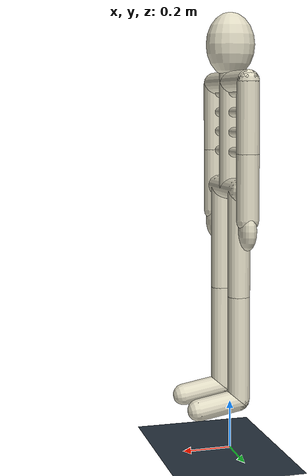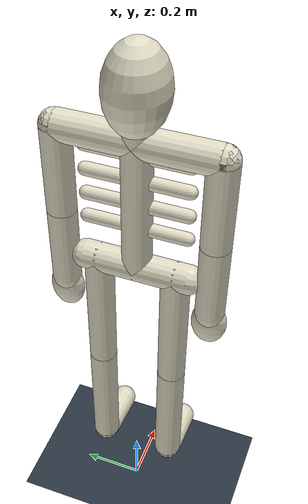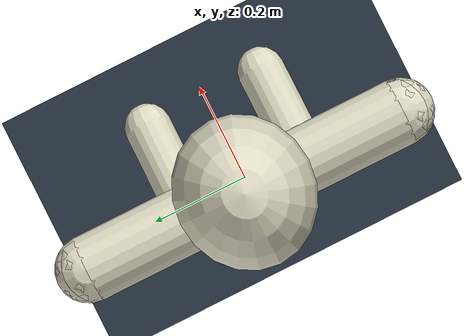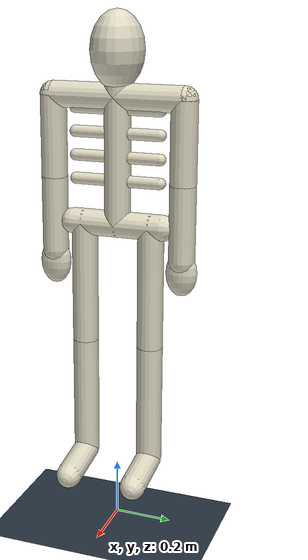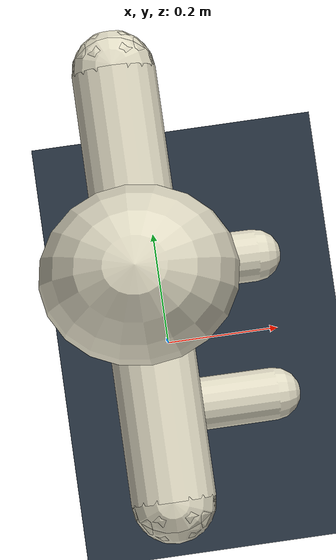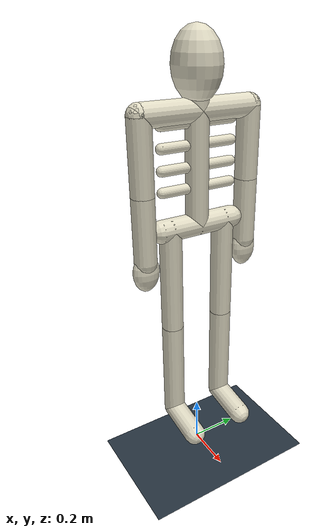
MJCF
<mujoco model="supported_scuba_skeleton">
  <compiler angle="radian" autolimits="true" />
  <option timestep="0.002" integrator="implicitfast" />
  <default>
    <joint damping="1.5" armature="0.03" limited="true" />
    <geom type="capsule" size="0.045" rgba="0.88 0.86 0.77 1" contype="0" conaffinity="0" />
  </default>
  <worldbody>
    <light pos="1 -2 4" dir="-0.2 0.5 -1" />
    <geom name="floor" type="plane" size="4 4 0.1" rgba="0.15 0.20 0.25 1" />
    <body name="pelvis" pos="0 0 1.1">
      <geom fromto="0 -0.16 0 0 0.16 0" mass="6" name="pelvis" />
      <body name="torso">
        <joint name="torso_sway" axis="1 0 0" range="-0.3 0.3" />
        <joint name="torso_turn" axis="0 0 1" range="-0.4 0.4" />
        <geom fromto="0 0 0 0 0 0.5" mass="12" name="spine" contype="1" conaffinity="2" />
        <geom fromto="0 -0.23 0.43 0 0.23 0.43" mass="2" name="shoulder_bar" contype="1" conaffinity="2" />
        <geom fromto="0 -0.15 0.15 0 0.15 0.15" size="0.02" mass="0.15" name="rib_1" contype="1" conaffinity="2" />
        <geom fromto="0 -0.15 0.23 0 0.15 0.23" size="0.02" mass="0.15" name="rib_2" contype="1" conaffinity="2" />
        <geom fromto="0 -0.15 0.31 0 0.15 0.31" size="0.02" mass="0.15" name="rib_3" contype="1" conaffinity="2" />
        <geom fromto="0 -0.15 0.39 0 0.15 0.39" size="0.02" mass="0.15" name="rib_4" contype="1" conaffinity="2" />
        <body name="head" pos="0 0 0.58">
          <joint name="head_nod" axis="0 1 0" range="-0.4 0.4" />
          <geom type="ellipsoid" size="0.10 0.09 0.13" mass="3" name="skull" />
        </body>
        <body name="right_upper_arm" pos="0 -0.23 0.43">
          <joint name="right_shoulder_forward" axis="0 1 0" range="-1.8 1.8" />
          <joint name="right_shoulder_out" axis="1 0 0" range="-1.5 1.5" />
          <joint name="right_shoulder_twist" axis="0 0 1" range="-2.5 2.5" />
          <geom fromto="0 0 0 0 0 -0.28" mass="1.5" name="right_upper_arm" contype="2" conaffinity="1" />
          <body name="right_forearm" pos="0 0 -0.28">
            <joint name="right_elbow" axis="0 -1 0" range="0 2.4" />
            <geom fromto="0 0 0 0 0 -0.26" mass="1" name="right_forearm" contype="2" conaffinity="1" />
            <geom type="ellipsoid" pos="0 0 -0.30" size="0.035 0.055 0.08" mass="0.3" name="right_hand" contype="2" conaffinity="1" />
          </body>
        </body>
        <body name="left_upper_arm" pos="0 0.23 0.43">
          <joint name="left_shoulder_forward" axis="0 1 0" range="-1.8 1.8" />
          <joint name="left_shoulder_out" axis="1 0 0" range="-1.5 1.5" />
          <joint name="left_shoulder_twist" axis="0 0 1" range="-2.5 2.5" />
          <geom fromto="0 0 0 0 0 -0.28" mass="1.5" name="left_upper_arm" contype="2" conaffinity="1" />
          <body name="left_forearm" pos="0 0 -0.28">
            <joint name="left_elbow" axis="0 -1 0" range="0 2.4" />
            <geom fromto="0 0 0 0 0 -0.26" mass="1" name="left_forearm" contype="2" conaffinity="1" />
            <geom type="ellipsoid" pos="0 0 -0.30" size="0.035 0.055 0.08" mass="0.3" name="left_hand" contype="2" conaffinity="1" />
          </body>
        </body>
      </body>
      <body name="right_thigh" pos="0 -0.12 0">
        <joint name="right_hip" axis="0 1 0" range="-0.7 0.7" />
        <geom fromto="0 0 0 0 0 -0.43" mass="5" name="right_thigh" />
        <body name="right_shin" pos="0 0 -0.43">
          <joint name="right_knee" axis="0 -1 0" range="0 1.4" />
          <geom fromto="0 0 0 0 0 -0.43" mass="3" name="right_shin" />
          <body name="right_foot" pos="0 0 -0.43">
            <joint name="right_ankle" axis="0 1 0" range="-0.4 0.4" />
            <geom fromto="0 0 0 0.17 0 -0.03" mass="0.6" name="right_foot" />
          </body>
        </body>
      </body>
      <body name="left_thigh" pos="0 0.12 0">
        <joint name="left_hip" axis="0 1 0" range="-0.7 0.7" />
        <geom fromto="0 0 0 0 0 -0.43" mass="5" name="left_thigh" />
        <body name="left_shin" pos="0 0 -0.43">
          <joint name="left_knee" axis="0 -1 0" range="0 1.4" />
          <geom fromto="0 0 0 0 0 -0.43" mass="3" name="left_shin" />
          <body name="left_foot" pos="0 0 -0.43">
            <joint name="left_ankle" axis="0 1 0" range="-0.4 0.4" />
            <geom fromto="0 0 0 0.17 0 -0.03" mass="0.6" name="left_foot" />
          </body>
        </body>
      </body>
    </body>
  </worldbody>
  <tendon>
    <fixed name="torso_sway_positive">
      <joint joint="torso_sway" coef="-0.04" />
    </fixed>
    <fixed name="torso_sway_negative">
      <joint joint="torso_sway" coef="0.04" />
    </fixed>
    <fixed name="torso_turn_positive">
      <joint joint="torso_turn" coef="-0.04" />
    </fixed>
    <fixed name="torso_turn_negative">
      <joint joint="torso_turn" coef="0.04" />
    </fixed>
    <fixed name="head_nod_positive">
      <joint joint="head_nod" coef="-0.04" />
    </fixed>
    <fixed name="head_nod_negative">
      <joint joint="head_nod" coef="0.04" />
    </fixed>
    <fixed name="right_shoulder_forward_positive">
      <joint joint="right_shoulder_forward" coef="-0.04" />
    </fixed>
    <fixed name="right_shoulder_forward_negative">
      <joint joint="right_shoulder_forward" coef="0.04" />
    </fixed>
    <fixed name="right_shoulder_out_positive">
      <joint joint="right_shoulder_out" coef="-0.04" />
    </fixed>
    <fixed name="right_shoulder_out_negative">
      <joint joint="right_shoulder_out" coef="0.04" />
    </fixed>
    <fixed name="right_shoulder_twist_positive">
      <joint joint="right_shoulder_twist" coef="-0.04" />
    </fixed>
    <fixed name="right_shoulder_twist_negative">
      <joint joint="right_shoulder_twist" coef="0.04" />
    </fixed>
    <fixed name="right_elbow_positive">
      <joint joint="right_elbow" coef="-0.04" />
    </fixed>
    <fixed name="right_elbow_negative">
      <joint joint="right_elbow" coef="0.04" />
    </fixed>
    <fixed name="left_shoulder_forward_positive">
      <joint joint="left_shoulder_forward" coef="-0.04" />
    </fixed>
    <fixed name="left_shoulder_forward_negative">
      <joint joint="left_shoulder_forward" coef="0.04" />
    </fixed>
    <fixed name="left_shoulder_out_positive">
      <joint joint="left_shoulder_out" coef="-0.04" />
    </fixed>
    <fixed name="left_shoulder_out_negative">
      <joint joint="left_shoulder_out" coef="0.04" />
    </fixed>
    <fixed name="left_shoulder_twist_positive">
      <joint joint="left_shoulder_twist" coef="-0.04" />
    </fixed>
    <fixed name="left_shoulder_twist_negative">
      <joint joint="left_shoulder_twist" coef="0.04" />
    </fixed>
    <fixed name="left_elbow_positive">
      <joint joint="left_elbow" coef="-0.04" />
    </fixed>
    <fixed name="left_elbow_negative">
      <joint joint="left_elbow" coef="0.04" />
    </fixed>
    <fixed name="right_hip_positive">
      <joint joint="right_hip" coef="-0.04" />
    </fixed>
    <fixed name="right_hip_negative">
      <joint joint="right_hip" coef="0.04" />
    </fixed>
    <fixed name="right_knee_positive">
      <joint joint="right_knee" coef="-0.04" />
    </fixed>
    <fixed name="right_knee_negative">
      <joint joint="right_knee" coef="0.04" />
    </fixed>
    <fixed name="right_ankle_positive">
      <joint joint="right_ankle" coef="-0.04" />
    </fixed>
    <fixed name="right_ankle_negative">
      <joint joint="right_ankle" coef="0.04" />
    </fixed>
    <fixed name="left_hip_positive">
      <joint joint="left_hip" coef="-0.04" />
    </fixed>
    <fixed name="left_hip_negative">
      <joint joint="left_hip" coef="0.04" />
    </fixed>
    <fixed name="left_knee_positive">
      <joint joint="left_knee" coef="-0.04" />
    </fixed>
    <fixed name="left_knee_negative">
      <joint joint="left_knee" coef="0.04" />
    </fixed>
    <fixed name="left_ankle_positive">
      <joint joint="left_ankle" coef="-0.04" />
    </fixed>
    <fixed name="left_ankle_negative">
      <joint joint="left_ankle" coef="0.04" />
    </fixed>
  </tendon>
  <actuator>
    <muscle name="torso_sway_positive" tendon="torso_sway_positive" ctrlrange="0 1" force="1200" lengthrange="-0.16 0.16" range="0.5 1.6" />
    <muscle name="torso_sway_negative" tendon="torso_sway_negative" ctrlrange="0 1" force="1200" lengthrange="-0.16 0.16" range="0.5 1.6" />
    <muscle name="torso_turn_positive" tendon="torso_turn_positive" ctrlrange="0 1" force="1200" lengthrange="-0.16 0.16" range="0.5 1.6" />
    <muscle name="torso_turn_negative" tendon="torso_turn_negative" ctrlrange="0 1" force="1200" lengthrange="-0.16 0.16" range="0.5 1.6" />
    <muscle name="head_nod_positive" tendon="head_nod_positive" ctrlrange="0 1" force="1200" lengthrange="-0.16 0.16" range="0.5 1.6" />
    <muscle name="head_nod_negative" tendon="head_nod_negative" ctrlrange="0 1" force="1200" lengthrange="-0.16 0.16" range="0.5 1.6" />
    <muscle name="right_shoulder_forward_positive" tendon="right_shoulder_forward_positive" ctrlrange="0 1" force="1200" lengthrange="-0.16 0.16" range="0.5 1.6" />
    <muscle name="right_shoulder_forward_negative" tendon="right_shoulder_forward_negative" ctrlrange="0 1" force="1200" lengthrange="-0.16 0.16" range="0.5 1.6" />
    <muscle name="right_shoulder_out_positive" tendon="right_shoulder_out_positive" ctrlrange="0 1" force="1200" lengthrange="-0.16 0.16" range="0.5 1.6" />
    <muscle name="right_shoulder_out_negative" tendon="right_shoulder_out_negative" ctrlrange="0 1" force="1200" lengthrange="-0.16 0.16" range="0.5 1.6" />
    <muscle name="right_shoulder_twist_positive" tendon="right_shoulder_twist_positive" ctrlrange="0 1" force="1200" lengthrange="-0.16 0.16" range="0.5 1.6" />
    <muscle name="right_shoulder_twist_negative" tendon="right_shoulder_twist_negative" ctrlrange="0 1" force="1200" lengthrange="-0.16 0.16" range="0.5 1.6" />
    <muscle name="right_elbow_positive" tendon="right_elbow_positive" ctrlrange="0 1" force="1200" lengthrange="-0.16 0.16" range="0.5 1.6" />
    <muscle name="right_elbow_negative" tendon="right_elbow_negative" ctrlrange="0 1" force="1200" lengthrange="-0.16 0.16" range="0.5 1.6" />
    <muscle name="left_shoulder_forward_positive" tendon="left_shoulder_forward_positive" ctrlrange="0 1" force="1200" lengthrange="-0.16 0.16" range="0.5 1.6" />
    <muscle name="left_shoulder_forward_negative" tendon="left_shoulder_forward_negative" ctrlrange="0 1" force="1200" lengthrange="-0.16 0.16" range="0.5 1.6" />
    <muscle name="left_shoulder_out_positive" tendon="left_shoulder_out_positive" ctrlrange="0 1" force="1200" lengthrange="-0.16 0.16" range="0.5 1.6" />
    <muscle name="left_shoulder_out_negative" tendon="left_shoulder_out_negative" ctrlrange="0 1" force="1200" lengthrange="-0.16 0.16" range="0.5 1.6" />
    <muscle name="left_shoulder_twist_positive" tendon="left_shoulder_twist_positive" ctrlrange="0 1" force="1200" lengthrange="-0.16 0.16" range="0.5 1.6" />
    <muscle name="left_shoulder_twist_negative" tendon="left_shoulder_twist_negative" ctrlrange="0 1" force="1200" lengthrange="-0.16 0.16" range="0.5 1.6" />
    <muscle name="left_elbow_positive" tendon="left_elbow_positive" ctrlrange="0 1" force="1200" lengthrange="-0.16 0.16" range="0.5 1.6" />
    <muscle name="left_elbow_negative" tendon="left_elbow_negative" ctrlrange="0 1" force="1200" lengthrange="-0.16 0.16" range="0.5 1.6" />
    <muscle name="right_hip_positive" tendon="right_hip_positive" ctrlrange="0 1" force="1200" lengthrange="-0.16 0.16" range="0.5 1.6" />
    <muscle name="right_hip_negative" tendon="right_hip_negative" ctrlrange="0 1" force="1200" lengthrange="-0.16 0.16" range="0.5 1.6" />
    <muscle name="right_knee_positive" tendon="right_knee_positive" ctrlrange="0 1" force="1200" lengthrange="-0.16 0.16" range="0.5 1.6" />
    <muscle name="right_knee_negative" tendon="right_knee_negative" ctrlrange="0 1" force="1200" lengthrange="-0.16 0.16" range="0.5 1.6" />
    <muscle name="right_ankle_positive" tendon="right_ankle_positive" ctrlrange="0 1" force="1200" lengthrange="-0.16 0.16" range="0.5 1.6" />
    <muscle name="right_ankle_negative" tendon="right_ankle_negative" ctrlrange="0 1" force="1200" lengthrange="-0.16 0.16" range="0.5 1.6" />
    <muscle name="left_hip_positive" tendon="left_hip_positive" ctrlrange="0 1" force="1200" lengthrange="-0.16 0.16" range="0.5 1.6" />
    <muscle name="left_hip_negative" tendon="left_hip_negative" ctrlrange="0 1" force="1200" lengthrange="-0.16 0.16" range="0.5 1.6" />
    <muscle name="left_knee_positive" tendon="left_knee_positive" ctrlrange="0 1" force="1200" lengthrange="-0.16 0.16" range="0.5 1.6" />
    <muscle name="left_knee_negative" tendon="left_knee_negative" ctrlrange="0 1" force="1200" lengthrange="-0.16 0.16" range="0.5 1.6" />
    <muscle name="left_ankle_positive" tendon="left_ankle_positive" ctrlrange="0 1" force="1200" lengthrange="-0.16 0.16" range="0.5 1.6" />
    <muscle name="left_ankle_negative" tendon="left_ankle_negative" ctrlrange="0 1" force="1200" lengthrange="-0.16 0.16" range="0.5 1.6" />
  </actuator>
  <contact>
    <pair geom1="right_upper_arm" geom2="spine" />
    <pair geom1="right_upper_arm" geom2="rib_1" />
    <pair geom1="right_upper_arm" geom2="rib_2" />
    <pair geom1="right_upper_arm" geom2="rib_3" />
    <pair geom1="right_upper_arm" geom2="rib_4" />
    <pair geom1="left_upper_arm" geom2="spine" />
    <pair geom1="left_upper_arm" geom2="rib_1" />
    <pair geom1="left_upper_arm" geom2="rib_2" />
    <pair geom1="left_upper_arm" geom2="rib_3" />
    <pair geom1="left_upper_arm" geom2="rib_4" />
  </contact>
</mujoco>
